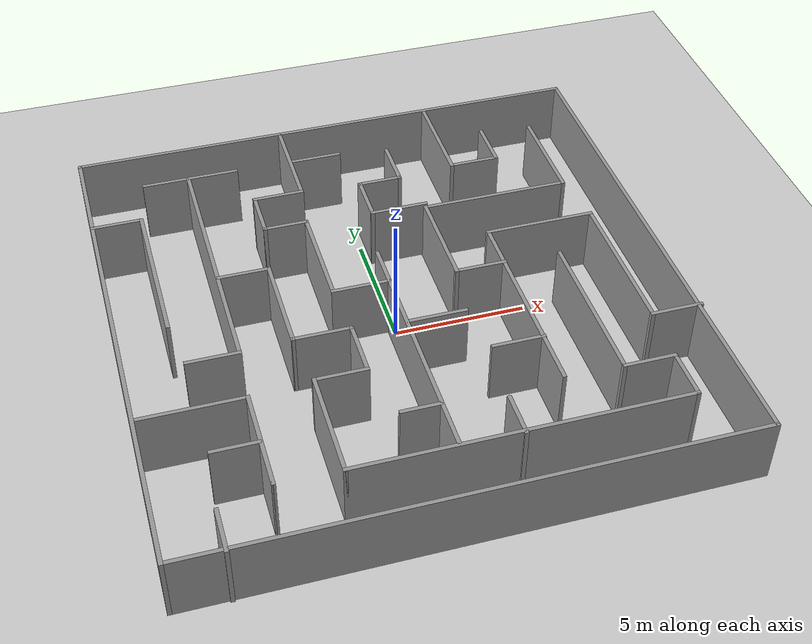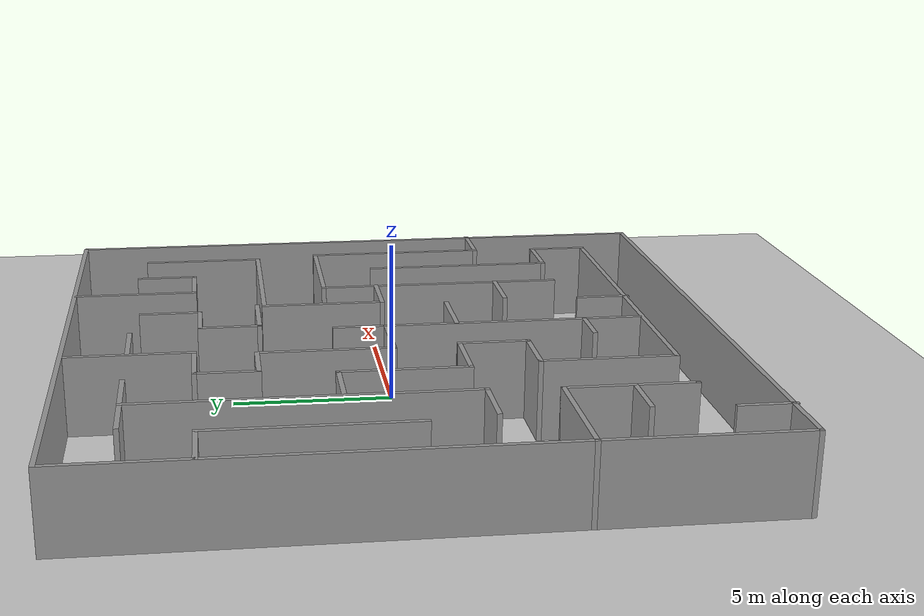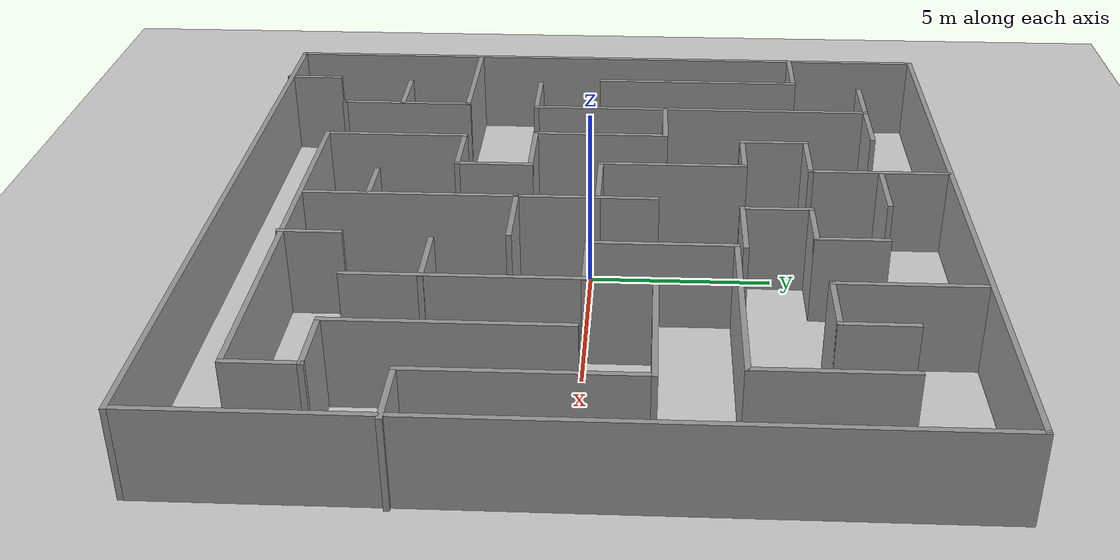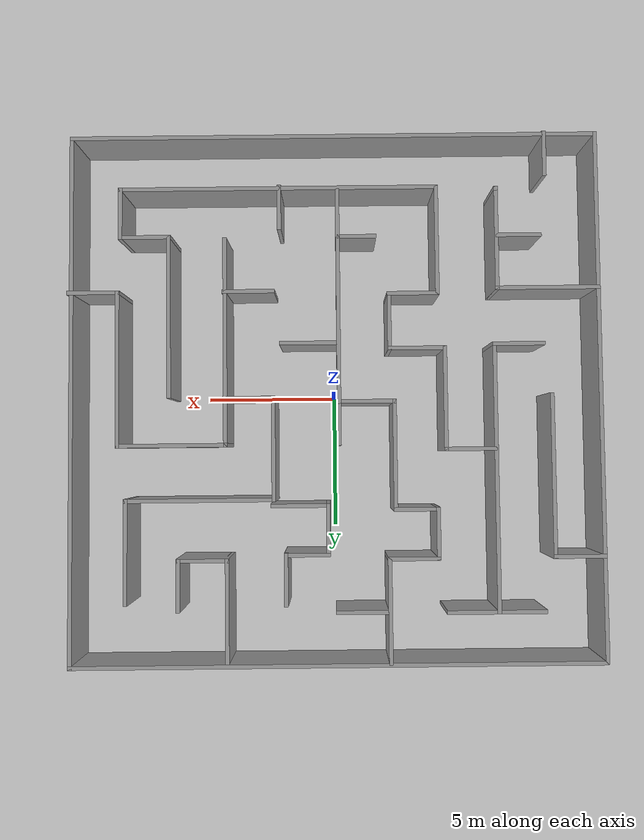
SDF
<sdf version="1.4">
 <world name="default">
  <light name="sun" type="directional">
   <pose>0 0 10 0 -0 0</pose>
   <diffuse>0.8 0.8 0.8 1</diffuse>
   <specular>0.2 0.2 0.2 1</specular>
   <attenuation>
    <range>1000</range>
    <constant>0.9</constant>
    <linear>0.01</linear>
    <quadratic>0.001</quadratic>
   </attenuation>
   <direction>-0.5 0.1 -0.9</direction>
  </light>
  <model name="ground_plane">
   <static>1</static>
   <link name="link">
    <collision name="collision">
     <geometry><plane><normal>0 0 1</normal><size>100 100</size></plane></geometry>
     <surface><friction><ode><mu>100</mu><mu2>50</mu2></ode></friction></surface>
    </collision>
    <visual name="visual">
     <cast_shadows>0</cast_shadows>
     <geometry><plane><normal>0 0 1</normal><size>100 100</size></plane></geometry>
     <material>
      <script><uri>file://media/materials/scripts/gazebo.material</uri><name>Gazebo/Grey</name></script>
     </material>
    </visual>
   </link>
  </model>
  <physics name="default_physics" default="0" type="ode">
   <max_step_size>0.001</max_step_size>
   <real_time_factor>1</real_time_factor>
   <real_time_update_rate>1000</real_time_update_rate>
   <gravity>0 0 -9.8</gravity>
  </physics>
  <scene><ambient>0.4 0.4 0.4 1</ambient><background>0.7 0.7 0.7 1</background><shadows>1</shadows></scene>
  <spherical_coordinates>
   <surface_model>EARTH_WGS84</surface_model>
   <latitude_deg>0</latitude_deg>
   <longitude_deg>0</longitude_deg>
   <elevation>0</elevation>
   <heading_deg>0</heading_deg>
  </spherical_coordinates>
  <model name="Maze2">
   <pose>-0.019131 -0.002608 0 0 -0 0</pose>
   <link name="Wall_10">
    <collision name="Wall_10_Collision">
     <geometry><box><size>6.25 0.15 2.5</size></box></geometry>
     <pose>0 0 1.25 0 -0 0</pose>
    </collision>
    <visual name="Wall_10_Visual">
     <pose>0 0 1.25 0 -0 0</pose>
     <geometry><box><size>6.25 0.15 2.5</size></box></geometry>
     <material>
      <script><uri>file://media/materials/scripts/gazebo.material</uri><name>Gazebo/Grey</name></script>
      <ambient>1 1 1 1</ambient>
     </material>
    </visual>
    <pose>-8.25 3.07 0 0 0 -1.5708</pose>
   </link>
   <link name="Wall_12">
    <collision name="Wall_12_Collision">
     <geometry><box><size>3.75 0.15 2.5</size></box></geometry>
     <pose>0 0 1.25 0 -0 0</pose>
    </collision>
    <visual name="Wall_12_Visual">
     <pose>0 0 1.25 0 -0 0</pose>
     <geometry><box><size>3.75 0.15 2.5</size></box></geometry>
     <material>
      <script><uri>file://media/materials/scripts/gazebo.material</uri><name>Gazebo/Grey</name></script>
      <ambient>1 1 1 1</ambient>
     </material>
    </visual>
    <pose>-6.02 8.16 0 0 -0 0</pose>
   </link>
   <link name="Wall_14">
    <collision name="Wall_14_Collision">
     <geometry><box><size>10.25 0.15 2.5</size></box></geometry>
     <pose>0 0 1.25 0 -0 0</pose>
    </collision>
    <visual name="Wall_14_Visual">
     <pose>0 0 1.25 0 -0 0</pose>
     <geometry><box><size>10.25 0.15 2.5</size></box></geometry>
     <material>
      <script><uri>file://media/materials/scripts/gazebo.material</uri><name>Gazebo/Grey</name></script>
      <ambient>1 1 1 1</ambient>
     </material>
    </visual>
    <pose>-6.1 3.11 0 0 0 -1.5708</pose>
   </link>
   <link name="Wall_15">
    <collision name="Wall_15_Collision">
     <geometry><box><size>2 0.15 2.5</size></box></geometry>
     <pose>0 0 1.25 0 -0 0</pose>
    </collision>
    <visual name="Wall_15_Visual">
     <pose>0 0 1.25 0 -0 0</pose>
     <geometry><box><size>2 0.15 2.5</size></box></geometry>
     <material>
      <script><uri>file://media/materials/scripts/gazebo.material</uri><name>Gazebo/Grey</name></script>
      <ambient>1 1 1 1</ambient>
     </material>
    </visual>
    <pose>-7.025 -1.94 0 0 -0 3.14159</pose>
   </link>
   <link name="Wall_17">
    <collision name="Wall_17_Collision">
     <geometry><box><size>2 0.15 2.5</size></box></geometry>
     <pose>0 0 1.25 0 -0 0</pose>
    </collision>
    <visual name="Wall_17_Visual">
     <pose>0 0 1.25 0 -0 0</pose>
     <geometry><box><size>2 0.15 2.5</size></box></geometry>
     <material>
      <script><uri>file://media/materials/scripts/gazebo.material</uri><name>Gazebo/Grey</name></script>
      <ambient>1 1 1 1</ambient>
     </material>
    </visual>
    <pose>-5.135 2.04 0 0 -0 0</pose>
   </link>
   <link name="Wall_18">
    <collision name="Wall_18_Collision">
     <geometry><box><size>4 0.15 2.5</size></box></geometry>
     <pose>0 0 1.25 0 -0 0</pose>
    </collision>
    <visual name="Wall_18_Visual">
     <pose>0 0 1.25 0 -0 0</pose>
     <geometry><box><size>4 0.15 2.5</size></box></geometry>
     <material>
      <script><uri>file://media/materials/scripts/gazebo.material</uri><name>Gazebo/Grey</name></script>
      <ambient>1 1 1 1</ambient>
     </material>
    </visual>
    <pose>-4.21 0.115 0 0 0 -1.5708</pose>
   </link>
   <link name="Wall_19">
    <collision name="Wall_19_Collision">
     <geometry><box><size>2.25 0.15 2.5</size></box></geometry>
     <pose>0 0 1.25 0 -0 0</pose>
    </collision>
    <visual name="Wall_19_Visual">
     <pose>0 0 1.25 0 -0 0</pose>
     <geometry><box><size>2.25 0.15 2.5</size></box></geometry>
     <material>
      <script><uri>file://media/materials/scripts/gazebo.material</uri><name>Gazebo/Grey</name></script>
      <ambient>1 1 1 1</ambient>
     </material>
    </visual>
    <pose>-3.16 -1.81 0 0 -0 0</pose>
   </link>
   <link name="Wall_20">
    <collision name="Wall_20_Collision">
     <geometry><box><size>2.25 0.15 2.5</size></box></geometry>
     <pose>0 0 1.25 0 -0 0</pose>
    </collision>
    <visual name="Wall_20_Visual">
     <pose>0 0 1.25 0 -0 0</pose>
     <geometry><box><size>2.25 0.15 2.5</size></box></geometry>
     <material>
      <script><uri>file://media/materials/scripts/gazebo.material</uri><name>Gazebo/Grey</name></script>
      <ambient>1 1 1 1</ambient>
     </material>
    </visual>
    <pose>-2.11 -2.86 0 0 0 -1.5708</pose>
   </link>
   <link name="Wall_21">
    <collision name="Wall_21_Collision">
     <geometry><box><size>2 0.15 2.5</size></box></geometry>
     <pose>0 0 1.25 0 -0 0</pose>
    </collision>
    <visual name="Wall_21_Visual">
     <pose>0 0 1.25 0 -0 0</pose>
     <geometry><box><size>2 0.15 2.5</size></box></geometry>
     <material>
      <script><uri>file://media/materials/scripts/gazebo.material</uri><name>Gazebo/Grey</name></script>
      <ambient>1 1 1 1</ambient>
     </material>
    </visual>
    <pose>-3.035 -3.91 0 0 -0 3.14159</pose>
   </link>
   <link name="Wall_22">
    <collision name="Wall_22_Collision">
     <geometry><box><size>4.25 0.15 2.5</size></box></geometry>
     <pose>0 0 1.25 0 -0 0</pose>
    </collision>
    <visual name="Wall_22_Visual">
     <pose>0 0 1.25 0 -0 0</pose>
     <geometry><box><size>4.25 0.15 2.5</size></box></geometry>
     <material>
      <script><uri>file://media/materials/scripts/gazebo.material</uri><name>Gazebo/Grey</name></script>
      <ambient>1 1 1 1</ambient>
     </material>
    </visual>
    <pose>-3.96 -5.96 0 0 0 -1.5708</pose>
   </link>
   <link name="Wall_23">
    <collision name="Wall_23_Collision">
     <geometry><box><size>12.25 0.15 2.5</size></box></geometry>
     <pose>0 0 1.25 0 -0 0</pose>
    </collision>
    <visual name="Wall_23_Visual">
     <pose>0 0 1.25 0 -0 0</pose>
     <geometry><box><size>12.25 0.15 2.5</size></box></geometry>
     <material>
      <script><uri>file://media/materials/scripts/gazebo.material</uri><name>Gazebo/Grey</name></script>
      <ambient>1 1 1 1</ambient>
     </material>
    </visual>
    <pose>2.09 -8.01 0 0 -0 0</pose>
   </link>
   <link name="Wall_24">
    <collision name="Wall_24_Collision">
     <geometry><box><size>2 0.15 2.5</size></box></geometry>
     <pose>0 0 1.25 0 -0 0</pose>
    </collision>
    <visual name="Wall_24_Visual">
     <pose>0 0 1.25 0 -0 0</pose>
     <geometry><box><size>2 0.15 2.5</size></box></geometry>
     <material>
      <script><uri>file://media/materials/scripts/gazebo.material</uri><name>Gazebo/Grey</name></script>
      <ambient>1 1 1 1</ambient>
     </material>
    </visual>
    <pose>8.14 -7.085 0 0 -0 1.5708</pose>
   </link>
   <link name="Wall_25">
    <collision name="Wall_25_Collision">
     <geometry><box><size>2 0.15 2.5</size></box></geometry>
     <pose>0 0 1.25 0 -0 0</pose>
    </collision>
    <visual name="Wall_25_Visual">
     <pose>0 0 1.25 0 -0 0</pose>
     <geometry><box><size>2 0.15 2.5</size></box></geometry>
     <material>
      <script><uri>file://media/materials/scripts/gazebo.material</uri><name>Gazebo/Grey</name></script>
      <ambient>1 1 1 1</ambient>
     </material>
    </visual>
    <pose>7.215 -6.16 0 0 -0 3.14159</pose>
   </link>
   <link name="Wall_26">
    <collision name="Wall_26_Collision">
     <geometry><box><size>6.25 0.15 2.5</size></box></geometry>
     <pose>0 0 1.25 0 -0 0</pose>
    </collision>
    <visual name="Wall_26_Visual">
     <pose>0 0 1.25 0 -0 0</pose>
     <geometry><box><size>6.25 0.15 2.5</size></box></geometry>
     <material>
      <script><uri>file://media/materials/scripts/gazebo.material</uri><name>Gazebo/Grey</name></script>
      <ambient>1 1 1 1</ambient>
     </material>
    </visual>
    <pose>6.29 -3.11 0 0 -0 1.5708</pose>
   </link>
   <link name="Wall_28">
    <collision name="Wall_28_Collision">
     <geometry><box><size>4 0.15 2.5</size></box></geometry>
     <pose>0 0 1.25 0 -0 0</pose>
    </collision>
    <visual name="Wall_28_Visual">
     <pose>0 0 1.25 0 -0 0</pose>
     <geometry><box><size>4 0.15 2.5</size></box></geometry>
     <material>
      <script><uri>file://media/materials/scripts/gazebo.material</uri><name>Gazebo/Grey</name></script>
      <ambient>1 1 1 1</ambient>
     </material>
    </visual>
    <pose>-8.175 -4.08 0 0 -0 0</pose>
   </link>
   <link name="Wall_29">
    <collision name="Wall_29_Collision">
     <geometry><box><size>4 0.15 2.5</size></box></geometry>
     <pose>0 0 1.25 0 -0 0</pose>
    </collision>
    <visual name="Wall_29_Visual">
     <pose>0 0 1.25 0 -0 0</pose>
     <geometry><box><size>4 0.15 2.5</size></box></geometry>
     <material>
      <script><uri>file://media/materials/scripts/gazebo.material</uri><name>Gazebo/Grey</name></script>
      <ambient>1 1 1 1</ambient>
     </material>
    </visual>
    <pose>-6.25 -6.005 0 0 0 -1.5708</pose>
   </link>
   <link name="Wall_30">
    <collision name="Wall_30_Collision">
     <geometry><box><size>0.15 0.15 2.5</size></box></geometry>
     <pose>0 0 1.25 0 -0 0</pose>
    </collision>
    <visual name="Wall_30_Visual">
     <pose>0 0 1.25 0 -0 0</pose>
     <geometry><box><size>0.15 0.15 2.5</size></box></geometry>
     <material>
      <script><uri>file://media/materials/scripts/gazebo.material</uri><name>Gazebo/Grey</name></script>
      <ambient>1 1 1 1</ambient>
     </material>
    </visual>
    <pose>-6.25 -7.93 0 0 -0 0</pose>
   </link>
   <link name="Wall_32">
    <collision name="Wall_32_Collision">
     <geometry><box><size>1.75 0.15 2.5</size></box></geometry>
     <pose>0 0 1.25 0 -0 0</pose>
    </collision>
    <visual name="Wall_32_Visual">
     <pose>0 0 1.25 0 -0 0</pose>
     <geometry><box><size>1.75 0.15 2.5</size></box></geometry>
     <material>
      <script><uri>file://media/materials/scripts/gazebo.material</uri><name>Gazebo/Grey</name></script>
      <ambient>1 1 1 1</ambient>
     </material>
    </visual>
    <pose>-7.1 -6.12 0 0 -0 3.14159</pose>
   </link>
   <link name="Wall_34">
    <collision name="Wall_34_Collision">
     <geometry><box><size>1.75 0.15 2.5</size></box></geometry>
     <pose>0 0 1.25 0 -0 0</pose>
    </collision>
    <visual name="Wall_34_Visual">
     <pose>0 0 1.25 0 -0 0</pose>
     <geometry><box><size>1.75 0.15 2.5</size></box></geometry>
     <material>
      <script><uri>file://media/materials/scripts/gazebo.material</uri><name>Gazebo/Grey</name></script>
      <ambient>1 1 1 1</ambient>
     </material>
    </visual>
    <pose>-8.14 -9.28 0 0 -0 1.5708</pose>
   </link>
   <link name="Wall_36">
    <collision name="Wall_36_Collision">
     <geometry><box><size>4 0.15 2.5</size></box></geometry>
     <pose>0 0 1.25 0 -0 0</pose>
    </collision>
    <visual name="Wall_36_Visual">
     <pose>0 0 1.25 0 -0 0</pose>
     <geometry><box><size>4 0.15 2.5</size></box></geometry>
     <material>
      <script><uri>file://media/materials/scripts/gazebo.material</uri><name>Gazebo/Grey</name></script>
      <ambient>1 1 1 1</ambient>
     </material>
    </visual>
    <pose>-2.02 8.075 0 0 0 -1.5708</pose>
   </link>
   <link name="Wall_37">
    <collision name="Wall_37_Collision">
     <geometry><box><size>2 0.15 2.5</size></box></geometry>
     <pose>0 0 1.25 0 -0 0</pose>
    </collision>
    <visual name="Wall_37_Visual">
     <pose>0 0 1.25 0 -0 0</pose>
     <geometry><box><size>2 0.15 2.5</size></box></geometry>
     <material>
      <script><uri>file://media/materials/scripts/gazebo.material</uri><name>Gazebo/Grey</name></script>
      <ambient>1 1 1 1</ambient>
     </material>
    </visual>
    <pose>-2.945 6.15 0 0 -0 3.14159</pose>
   </link>
   <link name="Wall_38">
    <collision name="Wall_38_Collision">
     <geometry><box><size>2 0.15 2.5</size></box></geometry>
     <pose>0 0 1.25 0 -0 0</pose>
    </collision>
    <visual name="Wall_38_Visual">
     <pose>0 0 1.25 0 -0 0</pose>
     <geometry><box><size>2 0.15 2.5</size></box></geometry>
     <material>
      <script><uri>file://media/materials/scripts/gazebo.material</uri><name>Gazebo/Grey</name></script>
      <ambient>1 1 1 1</ambient>
     </material>
    </visual>
    <pose>-3.87 5.225 0 0 0 -1.5708</pose>
   </link>
   <link name="Wall_39">
    <collision name="Wall_39_Collision">
     <geometry><box><size>1.75 0.15 2.5</size></box></geometry>
     <pose>0 0 1.25 0 -0 0</pose>
    </collision>
    <visual name="Wall_39_Visual">
     <pose>0 0 1.25 0 -0 0</pose>
     <geometry><box><size>1.75 0.15 2.5</size></box></geometry>
     <material>
      <script><uri>file://media/materials/scripts/gazebo.material</uri><name>Gazebo/Grey</name></script>
      <ambient>1 1 1 1</ambient>
     </material>
    </visual>
    <pose>-3.07 4.3 0 0 -0 0</pose>
   </link>
   <link name="Wall_4">
    <collision name="Wall_4_Collision">
     <geometry><box><size>20.25 0.15 2.5</size></box></geometry>
     <pose>0 0 1.25 0 -0 0</pose>
    </collision>
    <visual name="Wall_4_Visual">
     <pose>0 0 1.25 0 -0 0</pose>
     <geometry><box><size>20.25 0.15 2.5</size></box></geometry>
     <material>
      <script><uri>file://media/materials/scripts/gazebo.material</uri><name>Gazebo/Grey</name></script>
      <ambient>1 1 1 1</ambient>
     </material>
    </visual>
    <pose>-0.05 10.08 0 0 -0 0</pose>
   </link>
   <link name="Wall_40">
    <collision name="Wall_40_Collision">
     <geometry><box><size>4.25 0.15 2.5</size></box></geometry>
     <pose>0 0 1.25 0 -0 0</pose>
    </collision>
    <visual name="Wall_40_Visual">
     <pose>0 0 1.25 0 -0 0</pose>
     <geometry><box><size>4.25 0.15 2.5</size></box></geometry>
     <material>
      <script><uri>file://media/materials/scripts/gazebo.material</uri><name>Gazebo/Grey</name></script>
      <ambient>1 1 1 1</ambient>
     </material>
    </visual>
    <pose>-2.27 2.25 0 0 0 -1.5708</pose>
   </link>
   <link name="Wall_41">
    <collision name="Wall_41_Collision">
     <geometry><box><size>2.25 0.15 2.5</size></box></geometry>
     <pose>0 0 1.25 0 -0 0</pose>
    </collision>
    <visual name="Wall_41_Visual">
     <pose>0 0 1.25 0 -0 0</pose>
     <geometry><box><size>2.25 0.15 2.5</size></box></geometry>
     <material>
      <script><uri>file://media/materials/scripts/gazebo.material</uri><name>Gazebo/Grey</name></script>
      <ambient>1 1 1 1</ambient>
     </material>
    </visual>
    <pose>-1.22 0.2 0 0 -0 0</pose>
   </link>
   <link name="Wall_42">
    <collision name="Wall_42_Collision">
     <geometry><box><size>1.75 0.15 2.5</size></box></geometry>
     <pose>0 0 1.25 0 -0 0</pose>
    </collision>
    <visual name="Wall_42_Visual">
     <pose>0 0 1.25 0 -0 0</pose>
     <geometry><box><size>1.75 0.15 2.5</size></box></geometry>
     <material>
      <script><uri>file://media/materials/scripts/gazebo.material</uri><name>Gazebo/Grey</name></script>
      <ambient>1 1 1 1</ambient>
     </material>
    </visual>
    <pose>-0.17 1 0 0 -0 1.5708</pose>
   </link>
   <link name="Wall_44">
    <collision name="Wall_44_Collision">
     <geometry><box><size>8.25 0.15 2.5</size></box></geometry>
     <pose>0 0 1.25 0 -0 0</pose>
    </collision>
    <visual name="Wall_44_Visual">
     <pose>0 0 1.25 0 -0 0</pose>
     <geometry><box><size>8.25 0.15 2.5</size></box></geometry>
     <material>
      <script><uri>file://media/materials/scripts/gazebo.material</uri><name>Gazebo/Grey</name></script>
      <ambient>1 1 1 1</ambient>
     </material>
    </visual>
    <pose>-0.17 -3.85 0 0 0 -1.5708</pose>
   </link>
   <link name="Wall_46">
    <collision name="Wall_46_Collision">
     <geometry><box><size>1.5 0.15 2.5</size></box></geometry>
     <pose>0 0 1.25 0 -0 0</pose>
    </collision>
    <visual name="Wall_46_Visual">
     <pose>0 0 1.25 0 -0 0</pose>
     <geometry><box><size>1.5 0.15 2.5</size></box></geometry>
     <material>
      <script><uri>file://media/materials/scripts/gazebo.material</uri><name>Gazebo/Grey</name></script>
      <ambient>1 1 1 1</ambient>
     </material>
    </visual>
    <pose>-0.895 -6.12 0 0 -0 3.14159</pose>
   </link>
   <link name="Wall_48">
    <collision name="Wall_48_Collision">
     <geometry><box><size>2.25 0.15 2.5</size></box></geometry>
     <pose>0 0 1.25 0 -0 0</pose>
    </collision>
    <visual name="Wall_48_Visual">
     <pose>0 0 1.25 0 -0 0</pose>
     <geometry><box><size>2.25 0.15 2.5</size></box></geometry>
     <material>
      <script><uri>file://media/materials/scripts/gazebo.material</uri><name>Gazebo/Grey</name></script>
      <ambient>1 1 1 1</ambient>
     </material>
    </visual>
    <pose>0.95 -2.04 0 0 -0 0</pose>
   </link>
   <link name="Wall_5">
    <collision name="Wall_5_Collision">
     <geometry><box><size>20.25 0.15 2.5</size></box></geometry>
     <pose>0 0 1.25 0 -0 0</pose>
    </collision>
    <visual name="Wall_5_Visual">
     <pose>0 0 1.25 0 -0 0</pose>
     <geometry><box><size>20.25 0.15 2.5</size></box></geometry>
     <material>
      <script><uri>file://media/materials/scripts/gazebo.material</uri><name>Gazebo/Grey</name></script>
      <ambient>1 1 1 1</ambient>
     </material>
    </visual>
    <pose>10 0.03 0 0 0 -1.5708</pose>
   </link>
   <link name="Wall_50">
    <collision name="Wall_50_Collision">
     <geometry><box><size>1.75 0.15 2.5</size></box></geometry>
     <pose>0 0 1.25 0 -0 0</pose>
    </collision>
    <visual name="Wall_50_Visual">
     <pose>0 0 1.25 0 -0 0</pose>
     <geometry><box><size>1.75 0.15 2.5</size></box></geometry>
     <material>
      <script><uri>file://media/materials/scripts/gazebo.material</uri><name>Gazebo/Grey</name></script>
      <ambient>1 1 1 1</ambient>
     </material>
    </visual>
    <pose>2.06 -7.28 0 0 -0 1.5708</pose>
   </link>
   <link name="Wall_52">
    <collision name="Wall_52_Collision">
     <geometry><box><size>2 0.15 2.5</size></box></geometry>
     <pose>0 0 1.25 0 -0 0</pose>
    </collision>
    <visual name="Wall_52_Visual">
     <pose>0 0 1.25 0 -0 0</pose>
     <geometry><box><size>2 0.15 2.5</size></box></geometry>
     <material>
      <script><uri>file://media/materials/scripts/gazebo.material</uri><name>Gazebo/Grey</name></script>
      <ambient>1 1 1 1</ambient>
     </material>
    </visual>
    <pose>9.175 -4.04 0 0 -0 3.14159</pose>
   </link>
   <link name="Wall_53">
    <collision name="Wall_53_Collision">
     <geometry><box><size>6 0.15 2.5</size></box></geometry>
     <pose>0 0 1.25 0 -0 0</pose>
    </collision>
    <visual name="Wall_53_Visual">
     <pose>0 0 1.25 0 -0 0</pose>
     <geometry><box><size>6 0.15 2.5</size></box></geometry>
     <material>
      <script><uri>file://media/materials/scripts/gazebo.material</uri><name>Gazebo/Grey</name></script>
      <ambient>1 1 1 1</ambient>
     </material>
    </visual>
    <pose>8.25 -1.115 0 0 -0 1.5708</pose>
   </link>
   <link name="Wall_54">
    <collision name="Wall_54_Collision">
     <geometry><box><size>4.25 0.15 2.5</size></box></geometry>
     <pose>0 0 1.25 0 -0 0</pose>
    </collision>
    <visual name="Wall_54_Visual">
     <pose>0 0 1.25 0 -0 0</pose>
     <geometry><box><size>4.25 0.15 2.5</size></box></geometry>
     <material>
      <script><uri>file://media/materials/scripts/gazebo.material</uri><name>Gazebo/Grey</name></script>
      <ambient>1 1 1 1</ambient>
     </material>
    </visual>
    <pose>6.2 1.81 0 0 -0 3.14159</pose>
   </link>
   <link name="Wall_55">
    <collision name="Wall_55_Collision">
     <geometry><box><size>8 0.15 2.5</size></box></geometry>
     <pose>0 0 1.25 0 -0 0</pose>
    </collision>
    <visual name="Wall_55_Visual">
     <pose>0 0 1.25 0 -0 0</pose>
     <geometry><box><size>8 0.15 2.5</size></box></geometry>
     <material>
      <script><uri>file://media/materials/scripts/gazebo.material</uri><name>Gazebo/Grey</name></script>
      <ambient>1 1 1 1</ambient>
     </material>
    </visual>
    <pose>4.15 -2.115 0 0 0 -1.5708</pose>
   </link>
   <link name="Wall_57">
    <collision name="Wall_57_Collision">
     <geometry><box><size>2 0.15 2.5</size></box></geometry>
     <pose>0 0 1.25 0 -0 0</pose>
    </collision>
    <visual name="Wall_57_Visual">
     <pose>0 0 1.25 0 -0 0</pose>
     <geometry><box><size>2 0.15 2.5</size></box></geometry>
     <material>
      <script><uri>file://media/materials/scripts/gazebo.material</uri><name>Gazebo/Grey</name></script>
      <ambient>1 1 1 1</ambient>
     </material>
    </visual>
    <pose>3.255 -4.04 0 0 -0 3.14159</pose>
   </link>
   <link name="Wall_59">
    <collision name="Wall_59_Collision">
     <geometry><box><size>2 0.15 2.5</size></box></geometry>
     <pose>0 0 1.25 0 -0 0</pose>
    </collision>
    <visual name="Wall_59_Visual">
     <pose>0 0 1.25 0 -0 0</pose>
     <geometry><box><size>2 0.15 2.5</size></box></geometry>
     <material>
      <script><uri>file://media/materials/scripts/gazebo.material</uri><name>Gazebo/Grey</name></script>
      <ambient>1 1 1 1</ambient>
     </material>
    </visual>
    <pose>3.255 0.04 0 0 -0 3.14159</pose>
   </link>
   <link name="Wall_6">
    <collision name="Wall_6_Collision">
     <geometry><box><size>20.25 0.15 2.5</size></box></geometry>
     <pose>0 0 1.25 0 -0 0</pose>
    </collision>
    <visual name="Wall_6_Visual">
     <pose>0 0 1.25 0 -0 0</pose>
     <geometry><box><size>20.25 0.15 2.5</size></box></geometry>
     <material>
      <script><uri>file://media/materials/scripts/gazebo.material</uri><name>Gazebo/Grey</name></script>
      <ambient>1 1 1 1</ambient>
     </material>
    </visual>
    <pose>-0.05 -10.02 0 0 -0 3.14159</pose>
   </link>
   <link name="Wall_60">
    <collision name="Wall_60_Collision">
     <geometry><box><size>4 0.15 2.5</size></box></geometry>
     <pose>0 0 1.25 0 -0 0</pose>
    </collision>
    <visual name="Wall_60_Visual">
     <pose>0 0 1.25 0 -0 0</pose>
     <geometry><box><size>4 0.15 2.5</size></box></geometry>
     <material>
      <script><uri>file://media/materials/scripts/gazebo.material</uri><name>Gazebo/Grey</name></script>
      <ambient>1 1 1 1</ambient>
     </material>
    </visual>
    <pose>2.33 1.965 0 0 -0 1.5708</pose>
   </link>
   <link name="Wall_61">
    <collision name="Wall_61_Collision">
     <geometry><box><size>5.75 0.15 2.5</size></box></geometry>
     <pose>0 0 1.25 0 -0 0</pose>
    </collision>
    <visual name="Wall_61_Visual">
     <pose>0 0 1.25 0 -0 0</pose>
     <geometry><box><size>5.75 0.15 2.5</size></box></geometry>
     <material>
      <script><uri>file://media/materials/scripts/gazebo.material</uri><name>Gazebo/Grey</name></script>
      <ambient>1 1 1 1</ambient>
     </material>
    </visual>
    <pose>5.13 3.89 0 0 -0 0</pose>
   </link>
   <link name="Wall_62">
    <collision name="Wall_62_Collision">
     <geometry><box><size>4 0.15 2.5</size></box></geometry>
     <pose>0 0 1.25 0 -0 0</pose>
    </collision>
    <visual name="Wall_62_Visual">
     <pose>0 0 1.25 0 -0 0</pose>
     <geometry><box><size>4 0.15 2.5</size></box></geometry>
     <material>
      <script><uri>file://media/materials/scripts/gazebo.material</uri><name>Gazebo/Grey</name></script>
      <ambient>1 1 1 1</ambient>
     </material>
    </visual>
    <pose>7.93 5.815 0 0 -0 1.5708</pose>
   </link>
   <link name="Wall_64">
    <collision name="Wall_64_Collision">
     <geometry><box><size>2.25 0.15 2.5</size></box></geometry>
     <pose>0 0 1.25 0 -0 0</pose>
    </collision>
    <visual name="Wall_64_Visual">
     <pose>0 0 1.25 0 -0 0</pose>
     <geometry><box><size>2.25 0.15 2.5</size></box></geometry>
     <material>
      <script><uri>file://media/materials/scripts/gazebo.material</uri><name>Gazebo/Grey</name></script>
      <ambient>1 1 1 1</ambient>
     </material>
    </visual>
    <pose>1.33 4.12 0 0 -0 3.14159</pose>
   </link>
   <link name="Wall_65">
    <collision name="Wall_65_Collision">
     <geometry><box><size>2 0.15 2.5</size></box></geometry>
     <pose>0 0 1.25 0 -0 0</pose>
    </collision>
    <visual name="Wall_65_Visual">
     <pose>0 0 1.25 0 -0 0</pose>
     <geometry><box><size>2 0.15 2.5</size></box></geometry>
     <material>
      <script><uri>file://media/materials/scripts/gazebo.material</uri><name>Gazebo/Grey</name></script>
      <ambient>1 1 1 1</ambient>
     </material>
    </visual>
    <pose>0.28 5.045 0 0 -0 1.5708</pose>
   </link>
   <link name="Wall_66">
    <collision name="Wall_66_Collision">
     <geometry><box><size>1.75 0.15 2.5</size></box></geometry>
     <pose>0 0 1.25 0 -0 0</pose>
    </collision>
    <visual name="Wall_66_Visual">
     <pose>0 0 1.25 0 -0 0</pose>
     <geometry><box><size>1.75 0.15 2.5</size></box></geometry>
     <material>
      <script><uri>file://media/materials/scripts/gazebo.material</uri><name>Gazebo/Grey</name></script>
      <ambient>1 1 1 1</ambient>
     </material>
    </visual>
    <pose>1.08 5.97 0 0 -0 0</pose>
   </link>
   <link name="Wall_67">
    <collision name="Wall_67_Collision">
     <geometry><box><size>2 0.15 2.5</size></box></geometry>
     <pose>0 0 1.25 0 -0 0</pose>
    </collision>
    <visual name="Wall_67_Visual">
     <pose>0 0 1.25 0 -0 0</pose>
     <geometry><box><size>2 0.15 2.5</size></box></geometry>
     <material>
      <script><uri>file://media/materials/scripts/gazebo.material</uri><name>Gazebo/Grey</name></script>
      <ambient>1 1 1 1</ambient>
     </material>
    </visual>
    <pose>1.88 6.895 0 0 -0 1.5708</pose>
   </link>
   <link name="Wall_69">
    <collision name="Wall_69_Collision">
     <geometry><box><size>2 0.15 2.5</size></box></geometry>
     <pose>0 0 1.25 0 -0 0</pose>
    </collision>
    <visual name="Wall_69_Visual">
     <pose>0 0 1.25 0 -0 0</pose>
     <geometry><box><size>2 0.15 2.5</size></box></geometry>
     <material>
      <script><uri>file://media/materials/scripts/gazebo.material</uri><name>Gazebo/Grey</name></script>
      <ambient>1 1 1 1</ambient>
     </material>
    </visual>
    <pose>-0.975 8.12 0 0 -0 0</pose>
   </link>
   <link name="Wall_7">
    <collision name="Wall_7_Collision">
     <geometry><box><size>20.25 0.15 2.5</size></box></geometry>
     <pose>0 0 1.25 0 -0 0</pose>
    </collision>
    <visual name="Wall_7_Visual">
     <pose>0 0 1.25 0 -0 0</pose>
     <geometry><box><size>20.25 0.15 2.5</size></box></geometry>
     <material>
      <script><uri>file://media/materials/scripts/gazebo.material</uri><name>Gazebo/Grey</name></script>
      <ambient>1 1 1 1</ambient>
     </material>
    </visual>
    <pose>-10.1 0.03 0 0 -0 1.5708</pose>
   </link>
   <link name="Wall_71">
    <collision name="Wall_71_Collision">
     <geometry><box><size>4 0.15 2.5</size></box></geometry>
     <pose>0 0 1.25 0 -0 0</pose>
    </collision>
    <visual name="Wall_71_Visual">
     <pose>0 0 1.25 0 -0 0</pose>
     <geometry><box><size>4 0.15 2.5</size></box></geometry>
     <material>
      <script><uri>file://media/materials/scripts/gazebo.material</uri><name>Gazebo/Grey</name></script>
      <ambient>1 1 1 1</ambient>
     </material>
    </visual>
    <pose>4.1 8.075 0 0 0 -1.5708</pose>
   </link>
   <link name="Wall_72">
    <collision name="Wall_72_Collision">
     <geometry><box><size>2 0.15 2.5</size></box></geometry>
     <pose>0 0 1.25 0 -0 0</pose>
    </collision>
    <visual name="Wall_72_Visual">
     <pose>0 0 1.25 0 -0 0</pose>
     <geometry><box><size>2 0.15 2.5</size></box></geometry>
     <material>
      <script><uri>file://media/materials/scripts/gazebo.material</uri><name>Gazebo/Grey</name></script>
      <ambient>1 1 1 1</ambient>
     </material>
    </visual>
    <pose>5.025 6.15 0 0 -0 0</pose>
   </link>
   <link name="Wall_73">
    <collision name="Wall_73_Collision">
     <geometry><box><size>2 0.15 2.5</size></box></geometry>
     <pose>0 0 1.25 0 -0 0</pose>
    </collision>
    <visual name="Wall_73_Visual">
     <pose>0 0 1.25 0 -0 0</pose>
     <geometry><box><size>2 0.15 2.5</size></box></geometry>
     <material>
      <script><uri>file://media/materials/scripts/gazebo.material</uri><name>Gazebo/Grey</name></script>
      <ambient>1 1 1 1</ambient>
     </material>
    </visual>
    <pose>5.95 7.075 0 0 -0 1.5708</pose>
   </link>
   <link name="Wall_9">
    <collision name="Wall_9_Collision">
     <geometry><box><size>2 0.15 2.5</size></box></geometry>
     <pose>0 0 1.25 0 -0 0</pose>
    </collision>
    <visual name="Wall_9_Visual">
     <pose>0 0 1.25 0 -0 0</pose>
     <geometry><box><size>2 0.15 2.5</size></box></geometry>
     <material>
      <script><uri>file://media/materials/scripts/gazebo.material</uri><name>Gazebo/Grey</name></script>
      <ambient>1 1 1 1</ambient>
     </material>
    </visual>
    <pose>-9.175 6.12 0 0 -0 0</pose>
   </link>
   <static>1</static>
  </model>
 </world>
</sdf>
